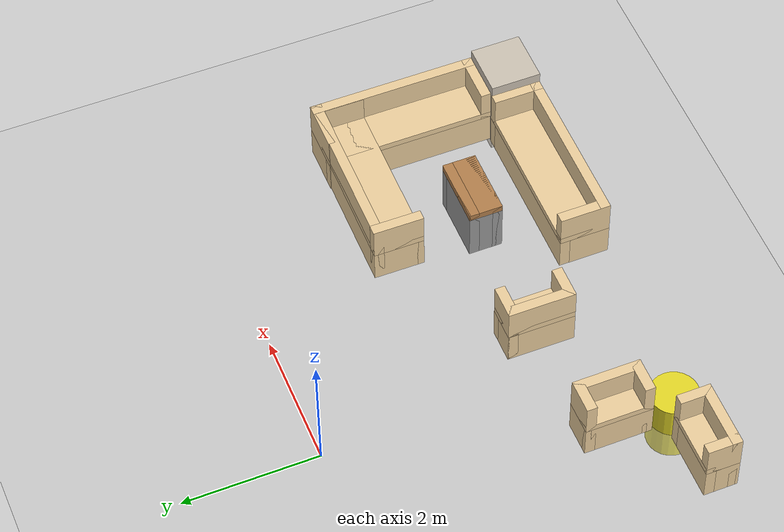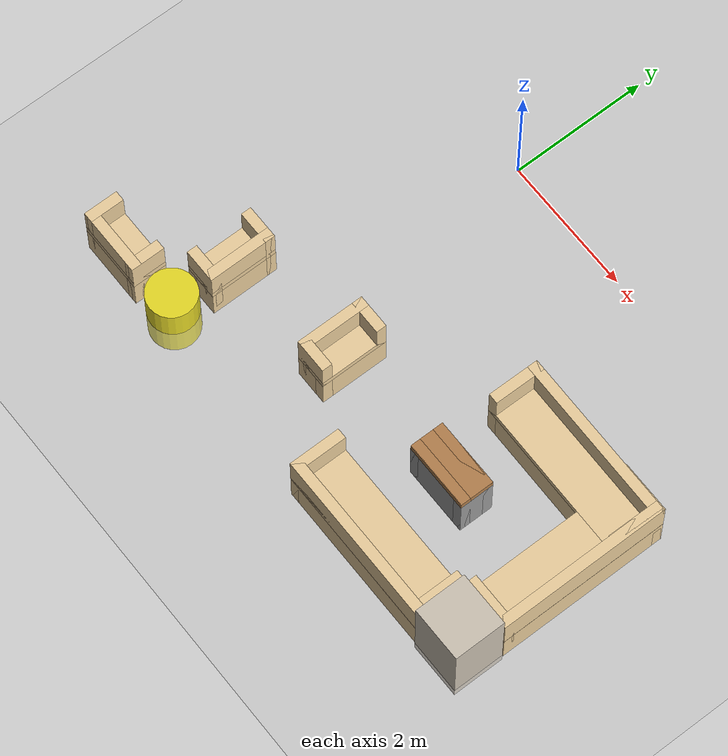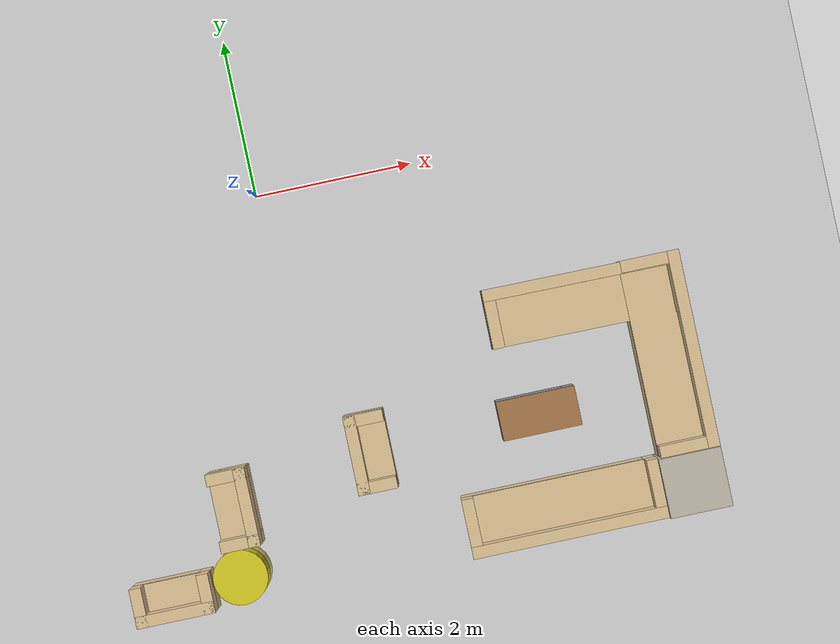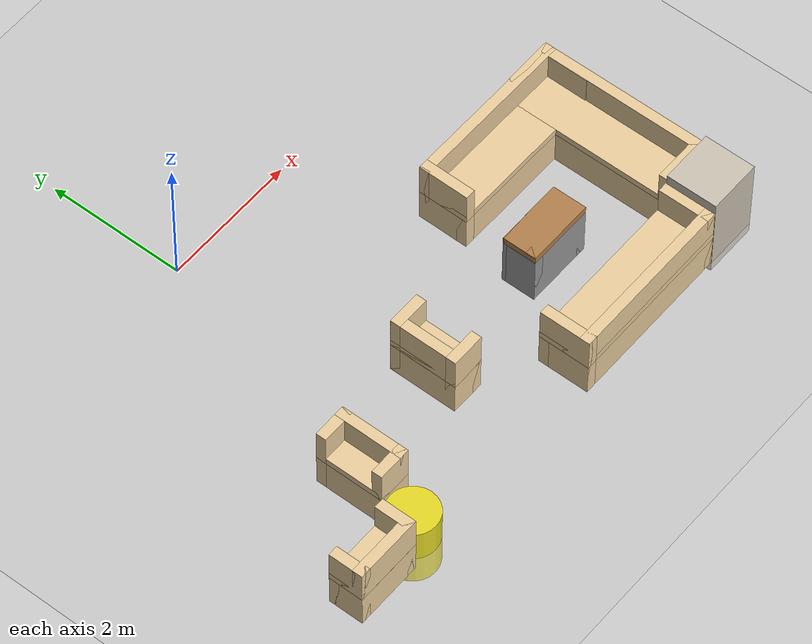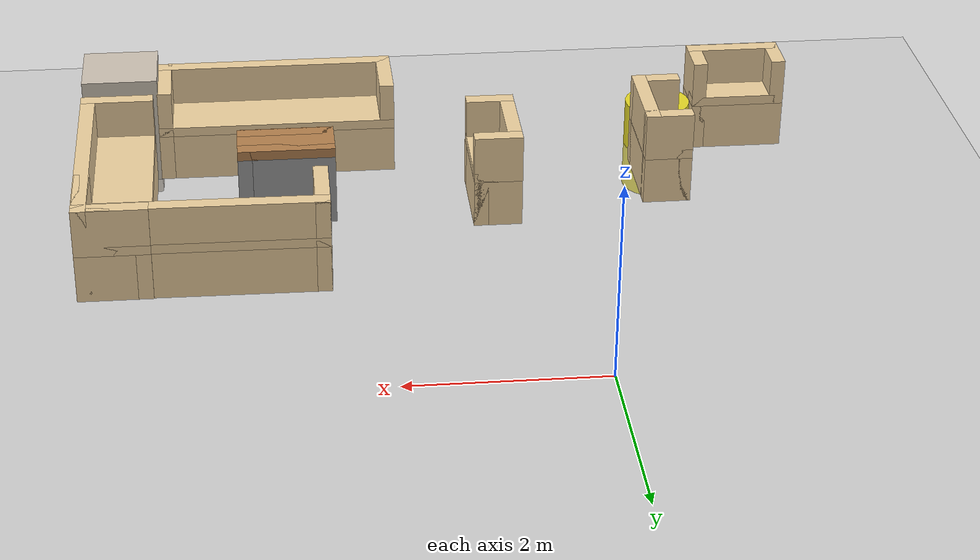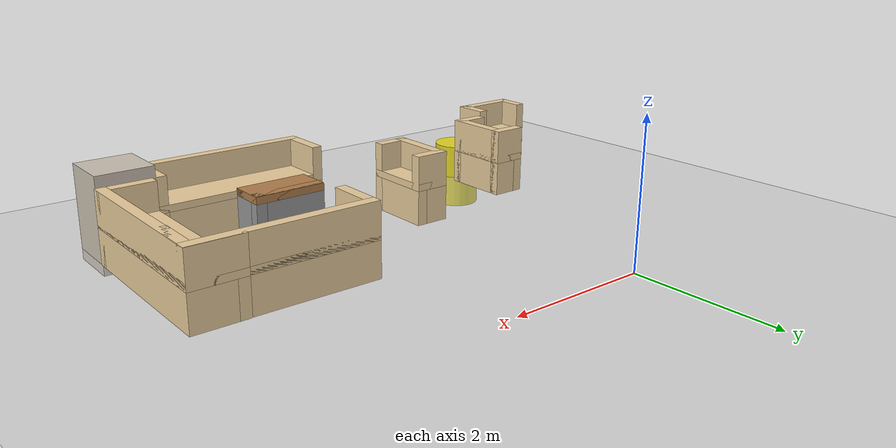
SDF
<sdf version="1.6">
 <world name="default">
  <model name="ground_plane">
   <static>1</static>
   <link name="link">
    <collision name="collision">
     <geometry><plane><normal>0 0 1</normal><size>100 100</size></plane></geometry>
     <surface><friction><ode><mu>100</mu><mu2>50</mu2></ode></friction></surface>
    </collision>
    <visual name="visual">
     <cast_shadows>0</cast_shadows>
     <geometry><plane><normal>0 0 1</normal><size>100 100</size></plane></geometry>
     <material>
      <script><uri>file://media/materials/scripts/gazebo.material</uri><name>Gazebo/Grey</name></script>
     </material>
    </visual>
   </link>
  </model>
  <model name="sofa_long.world">
   <pose>2.99095 -4.64793 0 0 -0 0</pose>
   <link name="Floor_1">
    <collision name="Floor_1_Collision">
     <geometry><box><size>2.5 0.75 0.1</size></box></geometry>
     <pose>0 0 0.05 0 -0 0</pose>
    </collision>
    <visual name="Floor_1_Visual">
     <pose>0 0 0.05 0 -0 0</pose>
     <geometry><box><size>2.5 0.75 0.1</size></box></geometry>
     <material>
      <script><uri>file://media/materials/scripts/gazebo.material</uri><name>Gazebo/Grey</name></script>
      <ambient>0.921569 0.807843 0.615686 1</ambient>
     </material>
     <meta><layer>1</layer></meta>
    </visual>
    <pose>0 0 0.5 0 -0 0</pose>
   </link>
   <link name="Wall_11">
    <collision name="Wall_11_Collision">
     <geometry><box><size>2.5 0.15 0.5</size></box></geometry>
     <pose>0 0 0.25 0 -0 0</pose>
    </collision>
    <visual name="Wall_11_Visual">
     <pose>0 0 0.25 0 -0 0</pose>
     <geometry><box><size>2.5 0.15 0.5</size></box></geometry>
     <material>
      <script><uri>file://media/materials/scripts/gazebo.material</uri><name>Gazebo/Grey</name></script>
      <ambient>0.921569 0.807843 0.615686 1</ambient>
     </material>
     <meta><layer>0</layer></meta>
    </visual>
    <pose>0 -0.3 0 0 -0 0</pose>
   </link>
   <link name="Wall_12">
    <collision name="Wall_12_Collision">
     <geometry><box><size>0.75 0.15 0.5</size></box></geometry>
     <pose>0 0 0.25 0 -0 0</pose>
    </collision>
    <visual name="Wall_12_Visual">
     <pose>0 0 0.25 0 -0 0</pose>
     <geometry><box><size>0.75 0.15 0.5</size></box></geometry>
     <material>
      <script><uri>file://media/materials/scripts/gazebo.material</uri><name>Gazebo/Grey</name></script>
      <ambient>0.921569 0.807843 0.615686 1</ambient>
     </material>
     <meta><layer>0</layer></meta>
    </visual>
    <pose>1.175 0 0 0 -0 1.5708</pose>
   </link>
   <link name="Wall_13">
    <collision name="Wall_13_Collision">
     <geometry><box><size>2.5 0.15 0.5</size></box></geometry>
     <pose>0 0 0.25 0 -0 0</pose>
    </collision>
    <visual name="Wall_13_Visual">
     <pose>0 0 0.25 0 -0 0</pose>
     <geometry><box><size>2.5 0.15 0.5</size></box></geometry>
     <material>
      <script><uri>file://media/materials/scripts/gazebo.material</uri><name>Gazebo/Grey</name></script>
      <ambient>0.921569 0.807843 0.615686 1</ambient>
     </material>
     <meta><layer>0</layer></meta>
    </visual>
    <pose>0 0.3 0 0 -0 3.14159</pose>
   </link>
   <link name="Wall_14">
    <collision name="Wall_14_Collision">
     <geometry><box><size>0.75 0.15 0.5</size></box></geometry>
     <pose>0 0 0.25 0 -0 0</pose>
    </collision>
    <visual name="Wall_14_Visual">
     <pose>0 0 0.25 0 -0 0</pose>
     <geometry><box><size>0.75 0.15 0.5</size></box></geometry>
     <material>
      <script><uri>file://media/materials/scripts/gazebo.material</uri><name>Gazebo/Grey</name></script>
      <ambient>0.921569 0.807843 0.615686 1</ambient>
     </material>
     <meta><layer>0</layer></meta>
    </visual>
    <pose>-1.175 0 0 0 0 -1.5708</pose>
   </link>
   <link name="Wall_16">
    <collision name="Wall_16_Collision">
     <geometry><box><size>2.5 0.15 0.5</size></box></geometry>
     <pose>0 0 0.25 0 -0 0</pose>
    </collision>
    <visual name="Wall_16_Visual">
     <pose>0 0 0.25 0 -0 0</pose>
     <geometry><box><size>2.5 0.15 0.5</size></box></geometry>
     <material>
      <script><uri>file://media/materials/scripts/gazebo.material</uri><name>Gazebo/Grey</name></script>
      <ambient>0.921569 0.807843 0.615686 1</ambient>
     </material>
     <meta><layer>1</layer></meta>
    </visual>
    <pose>0 -0.3 0.5 0 -0 0</pose>
   </link>
   <link name="Wall_17">
    <collision name="Wall_17_Collision">
     <geometry><box><size>0.75 0.15 0.5</size></box></geometry>
     <pose>0 0 0.25 0 -0 0</pose>
    </collision>
    <visual name="Wall_17_Visual">
     <pose>0 0 0.25 0 -0 0</pose>
     <geometry><box><size>0.75 0.15 0.5</size></box></geometry>
     <material>
      <script><uri>file://media/materials/scripts/gazebo.material</uri><name>Gazebo/Grey</name></script>
      <ambient>0.921569 0.807843 0.615686 1</ambient>
     </material>
     <meta><layer>1</layer></meta>
    </visual>
    <pose>1.175 0 0.5 0 -0 1.5708</pose>
   </link>
   <link name="Wall_19">
    <collision name="Wall_19_Collision">
     <geometry><box><size>0.75 0.15 0.5</size></box></geometry>
     <pose>0 0 0.25 0 -0 0</pose>
    </collision>
    <visual name="Wall_19_Visual">
     <pose>0 0 0.25 0 -0 0</pose>
     <geometry><box><size>0.75 0.15 0.5</size></box></geometry>
     <material>
      <script><uri>file://media/materials/scripts/gazebo.material</uri><name>Gazebo/Grey</name></script>
      <ambient>0.921569 0.807843 0.615686 1</ambient>
     </material>
     <meta><layer>1</layer></meta>
    </visual>
    <pose>-1.175 0 0.5 0 0 -1.5708</pose>
   </link>
   <static>1</static>
  </model>
  <model name="sofa_long.world_0">
   <pose>4.65758 -3.03297 0 0 -0 1.56969</pose>
   <link name="Floor_1">
    <collision name="Floor_1_Collision">
     <geometry><box><size>2.5 0.75 0.1</size></box></geometry>
     <pose>0 0 0.05 0 -0 0</pose>
    </collision>
    <visual name="Floor_1_Visual">
     <pose>0 0 0.05 0 -0 0</pose>
     <geometry><box><size>2.5 0.75 0.1</size></box></geometry>
     <material>
      <script><uri>file://media/materials/scripts/gazebo.material</uri><name>Gazebo/Grey</name></script>
      <ambient>0.921569 0.807843 0.615686 1</ambient>
     </material>
     <meta><layer>1</layer></meta>
    </visual>
    <pose>0 0 0.5 0 -0 0</pose>
   </link>
   <link name="Wall_11">
    <collision name="Wall_11_Collision">
     <geometry><box><size>2.5 0.15 0.5</size></box></geometry>
     <pose>0 0 0.25 0 -0 0</pose>
    </collision>
    <visual name="Wall_11_Visual">
     <pose>0 0 0.25 0 -0 0</pose>
     <geometry><box><size>2.5 0.15 0.5</size></box></geometry>
     <material>
      <script><uri>file://media/materials/scripts/gazebo.material</uri><name>Gazebo/Grey</name></script>
      <ambient>0.921569 0.807843 0.615686 1</ambient>
     </material>
     <meta><layer>0</layer></meta>
    </visual>
    <pose>0 -0.3 0 0 -0 0</pose>
   </link>
   <link name="Wall_12">
    <collision name="Wall_12_Collision">
     <geometry><box><size>0.75 0.15 0.5</size></box></geometry>
     <pose>0 0 0.25 0 -0 0</pose>
    </collision>
    <visual name="Wall_12_Visual">
     <pose>0 0 0.25 0 -0 0</pose>
     <geometry><box><size>0.75 0.15 0.5</size></box></geometry>
     <material>
      <script><uri>file://media/materials/scripts/gazebo.material</uri><name>Gazebo/Grey</name></script>
      <ambient>0.921569 0.807843 0.615686 1</ambient>
     </material>
     <meta><layer>0</layer></meta>
    </visual>
    <pose>1.175 0 0 0 -0 1.5708</pose>
   </link>
   <link name="Wall_13">
    <collision name="Wall_13_Collision">
     <geometry><box><size>2.5 0.15 0.5</size></box></geometry>
     <pose>0 0 0.25 0 -0 0</pose>
    </collision>
    <visual name="Wall_13_Visual">
     <pose>0 0 0.25 0 -0 0</pose>
     <geometry><box><size>2.5 0.15 0.5</size></box></geometry>
     <material>
      <script><uri>file://media/materials/scripts/gazebo.material</uri><name>Gazebo/Grey</name></script>
      <ambient>0.921569 0.807843 0.615686 1</ambient>
     </material>
     <meta><layer>0</layer></meta>
    </visual>
    <pose>0 0.3 0 0 -0 3.14159</pose>
   </link>
   <link name="Wall_14">
    <collision name="Wall_14_Collision">
     <geometry><box><size>0.75 0.15 0.5</size></box></geometry>
     <pose>0 0 0.25 0 -0 0</pose>
    </collision>
    <visual name="Wall_14_Visual">
     <pose>0 0 0.25 0 -0 0</pose>
     <geometry><box><size>0.75 0.15 0.5</size></box></geometry>
     <material>
      <script><uri>file://media/materials/scripts/gazebo.material</uri><name>Gazebo/Grey</name></script>
      <ambient>0.921569 0.807843 0.615686 1</ambient>
     </material>
     <meta><layer>0</layer></meta>
    </visual>
    <pose>-1.175 0 0 0 0 -1.5708</pose>
   </link>
   <link name="Wall_16">
    <collision name="Wall_16_Collision">
     <geometry><box><size>2.5 0.15 0.5</size></box></geometry>
     <pose>0 0 0.25 0 -0 0</pose>
    </collision>
    <visual name="Wall_16_Visual">
     <pose>0 0 0.25 0 -0 0</pose>
     <geometry><box><size>2.5 0.15 0.5</size></box></geometry>
     <material>
      <script><uri>file://media/materials/scripts/gazebo.material</uri><name>Gazebo/Grey</name></script>
      <ambient>0.921569 0.807843 0.615686 1</ambient>
     </material>
     <meta><layer>1</layer></meta>
    </visual>
    <pose>0 -0.3 0.5 0 -0 0</pose>
   </link>
   <link name="Wall_17">
    <collision name="Wall_17_Collision">
     <geometry><box><size>0.75 0.15 0.5</size></box></geometry>
     <pose>0 0 0.25 0 -0 0</pose>
    </collision>
    <visual name="Wall_17_Visual">
     <pose>0 0 0.25 0 -0 0</pose>
     <geometry><box><size>0.75 0.15 0.5</size></box></geometry>
     <material>
      <script><uri>file://media/materials/scripts/gazebo.material</uri><name>Gazebo/Grey</name></script>
      <ambient>0.921569 0.807843 0.615686 1</ambient>
     </material>
     <meta><layer>1</layer></meta>
    </visual>
    <pose>1.175 0 0.5 0 -0 1.5708</pose>
   </link>
   <link name="Wall_19">
    <collision name="Wall_19_Collision">
     <geometry><box><size>0.75 0.15 0.5</size></box></geometry>
     <pose>0 0 0.25 0 -0 0</pose>
    </collision>
    <visual name="Wall_19_Visual">
     <pose>0 0 0.25 0 -0 0</pose>
     <geometry><box><size>0.75 0.15 0.5</size></box></geometry>
     <material>
      <script><uri>file://media/materials/scripts/gazebo.material</uri><name>Gazebo/Grey</name></script>
      <ambient>0.921569 0.807843 0.615686 1</ambient>
     </material>
     <meta><layer>1</layer></meta>
    </visual>
    <pose>-1.175 0 0.5 0 0 -1.5708</pose>
   </link>
   <static>1</static>
  </model>
  <model name="table_small.world">
   <pose>2.91825 -3.42446 0 0 -0 0</pose>
   <link name="Floor_2">
    <collision name="Floor_2_Collision">
     <geometry><box><size>1 0.5 0.1</size></box></geometry>
     <pose>0 0 0.05 0 -0 0</pose>
    </collision>
    <visual name="Floor_2_Visual">
     <pose>0 0 0.05 0 -0 0</pose>
     <geometry><box><size>1 0.5 0.1</size></box></geometry>
     <material>
      <script><uri>file://media/materials/scripts/gazebo.material</uri><name>Gazebo/Wood</name></script>
      <ambient>1 1 1 1</ambient>
     </material>
     <meta><layer>1</layer></meta>
    </visual>
    <pose>0 0 0.75 0 -0 0</pose>
   </link>
   <link name="Wall_10">
    <collision name="Wall_10_Collision">
     <geometry><box><size>0.5 0.15 0.75</size></box></geometry>
     <pose>0 0 0.375 0 -0 0</pose>
    </collision>
    <visual name="Wall_10_Visual">
     <pose>0 0 0.375 0 -0 0</pose>
     <geometry><box><size>0.5 0.15 0.75</size></box></geometry>
     <material>
      <script><uri>file://media/materials/scripts/gazebo.material</uri><name>Gazebo/Grey</name></script>
      <ambient>1 1 1 1</ambient>
     </material>
     <meta><layer>0</layer></meta>
    </visual>
    <pose>0.425 0 0 0 -0 1.5708</pose>
   </link>
   <link name="Wall_11">
    <collision name="Wall_11_Collision">
     <geometry><box><size>1 0.15 0.75</size></box></geometry>
     <pose>0 0 0.375 0 -0 0</pose>
    </collision>
    <visual name="Wall_11_Visual">
     <pose>0 0 0.375 0 -0 0</pose>
     <geometry><box><size>1 0.15 0.75</size></box></geometry>
     <material>
      <script><uri>file://media/materials/scripts/gazebo.material</uri><name>Gazebo/Grey</name></script>
      <ambient>1 1 1 1</ambient>
     </material>
     <meta><layer>0</layer></meta>
    </visual>
    <pose>0 0.175 0 0 -0 3.14159</pose>
   </link>
   <link name="Wall_12">
    <collision name="Wall_12_Collision">
     <geometry><box><size>0.5 0.15 0.75</size></box></geometry>
     <pose>0 0 0.375 0 -0 0</pose>
    </collision>
    <visual name="Wall_12_Visual">
     <pose>0 0 0.375 0 -0 0</pose>
     <geometry><box><size>0.5 0.15 0.75</size></box></geometry>
     <material>
      <script><uri>file://media/materials/scripts/gazebo.material</uri><name>Gazebo/Grey</name></script>
      <ambient>1 1 1 1</ambient>
     </material>
     <meta><layer>0</layer></meta>
    </visual>
    <pose>-0.425 0 0 0 0 -1.5708</pose>
   </link>
   <link name="Wall_19">
    <collision name="Wall_19_Collision">
     <geometry><box><size>1 0.15 0.1</size></box></geometry>
     <pose>0 0 0.05 0 -0 0</pose>
    </collision>
    <visual name="Wall_19_Visual">
     <pose>0 0 0.05 0 -0 0</pose>
     <geometry><box><size>1 0.15 0.1</size></box></geometry>
     <material>
      <script><uri>file://media/materials/scripts/gazebo.material</uri><name>Gazebo/Wood</name></script>
      <ambient>1 1 1 1</ambient>
     </material>
     <meta><layer>1</layer></meta>
    </visual>
    <pose>0 -0.175 0.75 0 -0 0</pose>
   </link>
   <link name="Wall_21">
    <collision name="Wall_21_Collision">
     <geometry><box><size>1 0.15 0.1</size></box></geometry>
     <pose>0 0 0.05 0 -0 0</pose>
    </collision>
    <visual name="Wall_21_Visual">
     <pose>0 0 0.05 0 -0 0</pose>
     <geometry><box><size>1 0.15 0.1</size></box></geometry>
     <material>
      <script><uri>file://media/materials/scripts/gazebo.material</uri><name>Gazebo/Wood</name></script>
      <ambient>1 1 1 1</ambient>
     </material>
     <meta><layer>1</layer></meta>
    </visual>
    <pose>0 0.175 0.75 0 -0 3.14159</pose>
   </link>
   <link name="Wall_9">
    <collision name="Wall_9_Collision">
     <geometry><box><size>1 0.15 0.75</size></box></geometry>
     <pose>0 0 0.375 0 -0 0</pose>
    </collision>
    <visual name="Wall_9_Visual">
     <pose>0 0 0.375 0 -0 0</pose>
     <geometry><box><size>1 0.15 0.75</size></box></geometry>
     <material>
      <script><uri>file://media/materials/scripts/gazebo.material</uri><name>Gazebo/Grey</name></script>
      <ambient>1 1 1 1</ambient>
     </material>
     <meta><layer>0</layer></meta>
    </visual>
    <pose>0 -0.175 0 0 -0 0</pose>
   </link>
   <static>1</static>
  </model>
  <model name="livingroom_small_table">
   <link name="link">
    <pose>0 -0.143425 0 0 -0 0</pose>
    <inertial>
     <mass>0.769276</mass>
     <inertia>
      <ixx>0.146265</ixx>
      <ixy>0</ixy>
      <ixz>0</ixz>
      <iyy>0.149979</iyy>
      <iyz>0</iyz>
      <izz>0.0752102</izz>
     </inertia>
    </inertial>
    <visual name="visual">
     <geometry><box><size>0.784585 0.746751 1.313</size></box></geometry>
     <material>
      <script><name>Gazebo/Grey</name><uri>file://media/materials/scripts/gazebo.material</uri></script>
      <shader type="pixel"><normal_map>__default__</normal_map></shader>
      <ambient>0.8 0.76 0.7 1</ambient>
      <diffuse>0.7 0.7 0.7 1</diffuse>
      <specular>0.01 0.01 0.01 1</specular>
      <emissive>0 0 0 1</emissive>
     </material>
    </visual>
    <collision name="collision">
     <geometry><box><size>0.784585 0.746751 1.313</size></box></geometry>
     <surface>
      <friction>
       <ode><mu>1</mu><mu2>1</mu2><fdir1>0 0 0</fdir1><slip1>0</slip1><slip2>0</slip2></ode>
       <torsional>
        <coefficient>1</coefficient>
        <patch_radius>0</patch_radius>
        <surface_radius>0</surface_radius>
        <use_patch_radius>1</use_patch_radius>
        <ode><slip>0</slip></ode>
       </torsional>
      </friction>
      <bounce><restitution_coefficient>0</restitution_coefficient><threshold>1e+06</threshold></bounce>
      <contact>
       <collide_without_contact>0</collide_without_contact>
       <collide_without_contact_bitmask>1</collide_without_contact_bitmask>
       <collide_bitmask>1</collide_bitmask>
       <ode>
        <soft_cfm>0</soft_cfm>
        <soft_erp>0.2</soft_erp>
        <kp>1e+13</kp>
        <kd>1</kd>
        <max_vel>0.01</max_vel>
        <min_depth>0</min_depth>
       </ode>
       <bullet>
        <split_impulse>1</split_impulse>
        <split_impulse_penetration_threshold>-0.01</split_impulse_penetration_threshold>
        <soft_cfm>0</soft_cfm>
        <soft_erp>0.2</soft_erp>
        <kp>1e+13</kp>
        <kd>1</kd>
       </bullet>
      </contact>
     </surface>
    </collision>
   </link>
   <static>1</static>
   <pose>4.62378 -4.51183 0.5 0 -0 0</pose>
  </model>
  <model name="sofa_long.world_1">
   <pose>3.77732 -2.16265 0 0 -0 3.13345</pose>
   <link name="Floor_1">
    <collision name="Floor_1_Collision">
     <geometry><box><size>2.5 0.75 0.1</size></box></geometry>
     <pose>0 0 0.05 0 -0 0</pose>
    </collision>
    <visual name="Floor_1_Visual">
     <pose>0 0 0.05 0 -0 0</pose>
     <geometry><box><size>2.5 0.75 0.1</size></box></geometry>
     <material>
      <script><uri>file://media/materials/scripts/gazebo.material</uri><name>Gazebo/Grey</name></script>
      <ambient>0.921569 0.807843 0.615686 1</ambient>
     </material>
     <meta><layer>1</layer></meta>
    </visual>
    <pose>0 0 0.5 0 -0 0</pose>
   </link>
   <link name="Wall_11">
    <collision name="Wall_11_Collision">
     <geometry><box><size>2.5 0.15 0.5</size></box></geometry>
     <pose>0 0 0.25 0 -0 0</pose>
    </collision>
    <visual name="Wall_11_Visual">
     <pose>0 0 0.25 0 -0 0</pose>
     <geometry><box><size>2.5 0.15 0.5</size></box></geometry>
     <material>
      <script><uri>file://media/materials/scripts/gazebo.material</uri><name>Gazebo/Grey</name></script>
      <ambient>0.921569 0.807843 0.615686 1</ambient>
     </material>
     <meta><layer>0</layer></meta>
    </visual>
    <pose>0 -0.3 0 0 -0 0</pose>
   </link>
   <link name="Wall_12">
    <collision name="Wall_12_Collision">
     <geometry><box><size>0.75 0.15 0.5</size></box></geometry>
     <pose>0 0 0.25 0 -0 0</pose>
    </collision>
    <visual name="Wall_12_Visual">
     <pose>0 0 0.25 0 -0 0</pose>
     <geometry><box><size>0.75 0.15 0.5</size></box></geometry>
     <material>
      <script><uri>file://media/materials/scripts/gazebo.material</uri><name>Gazebo/Grey</name></script>
      <ambient>0.921569 0.807843 0.615686 1</ambient>
     </material>
     <meta><layer>0</layer></meta>
    </visual>
    <pose>1.175 0 0 0 -0 1.5708</pose>
   </link>
   <link name="Wall_13">
    <collision name="Wall_13_Collision">
     <geometry><box><size>2.5 0.15 0.5</size></box></geometry>
     <pose>0 0 0.25 0 -0 0</pose>
    </collision>
    <visual name="Wall_13_Visual">
     <pose>0 0 0.25 0 -0 0</pose>
     <geometry><box><size>2.5 0.15 0.5</size></box></geometry>
     <material>
      <script><uri>file://media/materials/scripts/gazebo.material</uri><name>Gazebo/Grey</name></script>
      <ambient>0.921569 0.807843 0.615686 1</ambient>
     </material>
     <meta><layer>0</layer></meta>
    </visual>
    <pose>0 0.3 0 0 -0 3.14159</pose>
   </link>
   <link name="Wall_14">
    <collision name="Wall_14_Collision">
     <geometry><box><size>0.75 0.15 0.5</size></box></geometry>
     <pose>0 0 0.25 0 -0 0</pose>
    </collision>
    <visual name="Wall_14_Visual">
     <pose>0 0 0.25 0 -0 0</pose>
     <geometry><box><size>0.75 0.15 0.5</size></box></geometry>
     <material>
      <script><uri>file://media/materials/scripts/gazebo.material</uri><name>Gazebo/Grey</name></script>
      <ambient>0.921569 0.807843 0.615686 1</ambient>
     </material>
     <meta><layer>0</layer></meta>
    </visual>
    <pose>-1.175 0 0 0 0 -1.5708</pose>
   </link>
   <link name="Wall_16">
    <collision name="Wall_16_Collision">
     <geometry><box><size>2.5 0.15 0.5</size></box></geometry>
     <pose>0 0 0.25 0 -0 0</pose>
    </collision>
    <visual name="Wall_16_Visual">
     <pose>0 0 0.25 0 -0 0</pose>
     <geometry><box><size>2.5 0.15 0.5</size></box></geometry>
     <material>
      <script><uri>file://media/materials/scripts/gazebo.material</uri><name>Gazebo/Grey</name></script>
      <ambient>0.921569 0.807843 0.615686 1</ambient>
     </material>
     <meta><layer>1</layer></meta>
    </visual>
    <pose>0 -0.3 0.5 0 -0 0</pose>
   </link>
   <link name="Wall_17">
    <collision name="Wall_17_Collision">
     <geometry><box><size>0.75 0.15 0.5</size></box></geometry>
     <pose>0 0 0.25 0 -0 0</pose>
    </collision>
    <visual name="Wall_17_Visual">
     <pose>0 0 0.25 0 -0 0</pose>
     <geometry><box><size>0.75 0.15 0.5</size></box></geometry>
     <material>
      <script><uri>file://media/materials/scripts/gazebo.material</uri><name>Gazebo/Grey</name></script>
      <ambient>0.921569 0.807843 0.615686 1</ambient>
     </material>
     <meta><layer>1</layer></meta>
    </visual>
    <pose>1.175 0 0.5 0 -0 1.5708</pose>
   </link>
   <link name="Wall_19">
    <collision name="Wall_19_Collision">
     <geometry><box><size>0.75 0.15 0.5</size></box></geometry>
     <pose>0 0 0.25 0 -0 0</pose>
    </collision>
    <visual name="Wall_19_Visual">
     <pose>0 0 0.25 0 -0 0</pose>
     <geometry><box><size>0.75 0.15 0.5</size></box></geometry>
     <material>
      <script><uri>file://media/materials/scripts/gazebo.material</uri><name>Gazebo/Grey</name></script>
      <ambient>0.921569 0.807843 0.615686 1</ambient>
     </material>
     <meta><layer>1</layer></meta>
    </visual>
    <pose>-1.175 0 0.5 0 0 -1.5708</pose>
   </link>
   <static>1</static>
  </model>
  <model name="unit_cylinder_two">
   <link name="link">
    <pose>0.189745 0.249697 0 0 -0 0</pose>
    <inertial>
     <mass>0.487334</mass>
     <inertia>
      <ixx>0.0554546</ixx>
      <ixy>0</ixy>
      <ixz>0</ixz>
      <iyy>0.0554546</iyy>
      <iyz>0</iyz>
      <izz>0.0296869</izz>
     </inertia>
    </inertial>
    <visual name="visual">
     <geometry><cylinder><radius>0.349047</radius><length>1</length></cylinder></geometry>
     <material>
      <script><name>Gazebo/Yellow</name><uri>file://media/materials/scripts/gazebo.material</uri></script>
      <shader type="pixel"><normal_map>__default__</normal_map></shader>
      <ambient>0.4 0.3 0.1 1</ambient>
      <diffuse>0.4 0.7 0.9 1</diffuse>
      <specular>0.01 0.01 0.01 1</specular>
      <emissive>0 0 0 1</emissive>
     </material>
    </visual>
    <collision name="collision">
     <geometry><cylinder><radius>0.349047</radius><length>1</length></cylinder></geometry>
     <surface>
      <friction>
       <ode><mu>1</mu><mu2>1</mu2><fdir1>0 0 0</fdir1><slip1>0</slip1><slip2>0</slip2></ode>
       <torsional>
        <coefficient>1</coefficient>
        <patch_radius>0</patch_radius>
        <surface_radius>0</surface_radius>
        <use_patch_radius>1</use_patch_radius>
        <ode><slip>0</slip></ode>
       </torsional>
      </friction>
      <bounce><restitution_coefficient>0</restitution_coefficient><threshold>1e+06</threshold></bounce>
      <contact>
       <collide_without_contact>0</collide_without_contact>
       <collide_without_contact_bitmask>1</collide_without_contact_bitmask>
       <collide_bitmask>1</collide_bitmask>
       <ode>
        <soft_cfm>0</soft_cfm>
        <soft_erp>0.2</soft_erp>
        <kp>1e+13</kp>
        <kd>1</kd>
        <max_vel>0.01</max_vel>
        <min_depth>0</min_depth>
       </ode>
       <bullet>
        <split_impulse>1</split_impulse>
        <split_impulse_penetration_threshold>-0.01</split_impulse_penetration_threshold>
        <soft_cfm>0</soft_cfm>
        <soft_erp>0.2</soft_erp>
        <kp>1e+13</kp>
        <kd>1</kd>
       </bullet>
      </contact>
     </surface>
    </collision>
   </link>
   <static>1</static>
   <pose>-1.36614 -4.91786 0 0 -0 0</pose>
  </model>
  <model name="sofa_short.world">
   <pose>-2.02857 -4.74297 0 0 -0 0</pose>
   <link name="Floor_0">
    <collision name="Floor_0_Collision">
     <geometry><box><size>1 0.5 0.1</size></box></geometry>
     <pose>0 0 0.05 0 -0 0</pose>
    </collision>
    <visual name="Floor_0_Visual">
     <pose>0 0 0.05 0 -0 0</pose>
     <geometry><box><size>1 0.5 0.1</size></box></geometry>
     <material>
      <script><uri>file://media/materials/scripts/gazebo.material</uri><name>Gazebo/Grey</name></script>
      <ambient>0.921569 0.807843 0.615686 1</ambient>
     </material>
     <meta><layer>1</layer></meta>
    </visual>
    <pose>0 0 0.5 0 -0 0</pose>
   </link>
   <link name="Wall_0">
    <collision name="Wall_0_Collision">
     <geometry><box><size>1 0.15 0.5</size></box></geometry>
     <pose>0 0 0.25 0 -0 0</pose>
    </collision>
    <visual name="Wall_0_Visual">
     <pose>0 0 0.25 0 -0 0</pose>
     <geometry><box><size>1 0.15 0.5</size></box></geometry>
     <material>
      <script><uri>file://media/materials/scripts/gazebo.material</uri><name>Gazebo/Grey</name></script>
      <ambient>0.921569 0.807843 0.615686 1</ambient>
     </material>
     <meta><layer>0</layer></meta>
    </visual>
    <pose>0 -0.175 0 0 -0 0</pose>
   </link>
   <link name="Wall_1">
    <collision name="Wall_1_Collision">
     <geometry><box><size>0.5 0.15 0.5</size></box></geometry>
     <pose>0 0 0.25 0 -0 0</pose>
    </collision>
    <visual name="Wall_1_Visual">
     <pose>0 0 0.25 0 -0 0</pose>
     <geometry><box><size>0.5 0.15 0.5</size></box></geometry>
     <material>
      <script><uri>file://media/materials/scripts/gazebo.material</uri><name>Gazebo/Grey</name></script>
      <ambient>0.921569 0.807843 0.615686 1</ambient>
     </material>
     <meta><layer>0</layer></meta>
    </visual>
    <pose>0.425 0 0 0 -0 1.5708</pose>
   </link>
   <link name="Wall_2">
    <collision name="Wall_2_Collision">
     <geometry><box><size>1 0.15 0.5</size></box></geometry>
     <pose>0 0 0.25 0 -0 0</pose>
    </collision>
    <visual name="Wall_2_Visual">
     <pose>0 0 0.25 0 -0 0</pose>
     <geometry><box><size>1 0.15 0.5</size></box></geometry>
     <material>
      <script><uri>file://media/materials/scripts/gazebo.material</uri><name>Gazebo/Grey</name></script>
      <ambient>0.921569 0.807843 0.615686 1</ambient>
     </material>
     <meta><layer>0</layer></meta>
    </visual>
    <pose>0 0.175 0 0 -0 3.14159</pose>
   </link>
   <link name="Wall_3">
    <collision name="Wall_3_Collision">
     <geometry><box><size>0.5 0.15 0.5</size></box></geometry>
     <pose>0 0 0.25 0 -0 0</pose>
    </collision>
    <visual name="Wall_3_Visual">
     <pose>0 0 0.25 0 -0 0</pose>
     <geometry><box><size>0.5 0.15 0.5</size></box></geometry>
     <material>
      <script><uri>file://media/materials/scripts/gazebo.material</uri><name>Gazebo/Grey</name></script>
      <ambient>0.921569 0.807843 0.615686 1</ambient>
     </material>
     <meta><layer>0</layer></meta>
    </visual>
    <pose>-0.425 0 0 0 0 -1.5708</pose>
   </link>
   <link name="Wall_5">
    <collision name="Wall_5_Collision">
     <geometry><box><size>1 0.15 0.5</size></box></geometry>
     <pose>0 0 0.25 0 -0 0</pose>
    </collision>
    <visual name="Wall_5_Visual">
     <pose>0 0 0.25 0 -0 0</pose>
     <geometry><box><size>1 0.15 0.5</size></box></geometry>
     <material>
      <script><uri>file://media/materials/scripts/gazebo.material</uri><name>Gazebo/Grey</name></script>
      <ambient>0.921569 0.807843 0.615686 1</ambient>
     </material>
     <meta><layer>1</layer></meta>
    </visual>
    <pose>0 -0.175 0.5 0 -0 0</pose>
   </link>
   <link name="Wall_6">
    <collision name="Wall_6_Collision">
     <geometry><box><size>0.5 0.15 0.5</size></box></geometry>
     <pose>0 0 0.25 0 -0 0</pose>
    </collision>
    <visual name="Wall_6_Visual">
     <pose>0 0 0.25 0 -0 0</pose>
     <geometry><box><size>0.5 0.15 0.5</size></box></geometry>
     <material>
      <script><uri>file://media/materials/scripts/gazebo.material</uri><name>Gazebo/Grey</name></script>
      <ambient>0.921569 0.807843 0.615686 1</ambient>
     </material>
     <meta><layer>1</layer></meta>
    </visual>
    <pose>0.425 0 0.5 0 -0 1.5708</pose>
   </link>
   <link name="Wall_8">
    <collision name="Wall_8_Collision">
     <geometry><box><size>0.5 0.15 0.5</size></box></geometry>
     <pose>0 0 0.25 0 -0 0</pose>
    </collision>
    <visual name="Wall_8_Visual">
     <pose>0 0 0.25 0 -0 0</pose>
     <geometry><box><size>0.5 0.15 0.5</size></box></geometry>
     <material>
      <script><uri>file://media/materials/scripts/gazebo.material</uri><name>Gazebo/Grey</name></script>
      <ambient>0.921569 0.807843 0.615686 1</ambient>
     </material>
     <meta><layer>1</layer></meta>
    </visual>
    <pose>-0.425 0 0.5 0 0 -1.5708</pose>
   </link>
   <static>1</static>
  </model>
  <model name="sofa_short.world_0">
   <pose>0.762575 -3.45472 0 0 0 -1.57332</pose>
   <link name="Floor_0">
    <collision name="Floor_0_Collision">
     <geometry><box><size>1 0.5 0.1</size></box></geometry>
     <pose>0 0 0.05 0 -0 0</pose>
    </collision>
    <visual name="Floor_0_Visual">
     <pose>0 0 0.05 0 -0 0</pose>
     <geometry><box><size>1 0.5 0.1</size></box></geometry>
     <material>
      <script><uri>file://media/materials/scripts/gazebo.material</uri><name>Gazebo/Grey</name></script>
      <ambient>0.921569 0.807843 0.615686 1</ambient>
     </material>
     <meta><layer>1</layer></meta>
    </visual>
    <pose>0 0 0.5 0 -0 0</pose>
   </link>
   <link name="Wall_0">
    <collision name="Wall_0_Collision">
     <geometry><box><size>1 0.15 0.5</size></box></geometry>
     <pose>0 0 0.25 0 -0 0</pose>
    </collision>
    <visual name="Wall_0_Visual">
     <pose>0 0 0.25 0 -0 0</pose>
     <geometry><box><size>1 0.15 0.5</size></box></geometry>
     <material>
      <script><uri>file://media/materials/scripts/gazebo.material</uri><name>Gazebo/Grey</name></script>
      <ambient>0.921569 0.807843 0.615686 1</ambient>
     </material>
     <meta><layer>0</layer></meta>
    </visual>
    <pose>0 -0.175 0 0 -0 0</pose>
   </link>
   <link name="Wall_1">
    <collision name="Wall_1_Collision">
     <geometry><box><size>0.5 0.15 0.5</size></box></geometry>
     <pose>0 0 0.25 0 -0 0</pose>
    </collision>
    <visual name="Wall_1_Visual">
     <pose>0 0 0.25 0 -0 0</pose>
     <geometry><box><size>0.5 0.15 0.5</size></box></geometry>
     <material>
      <script><uri>file://media/materials/scripts/gazebo.material</uri><name>Gazebo/Grey</name></script>
      <ambient>0.921569 0.807843 0.615686 1</ambient>
     </material>
     <meta><layer>0</layer></meta>
    </visual>
    <pose>0.425 0 0 0 -0 1.5708</pose>
   </link>
   <link name="Wall_2">
    <collision name="Wall_2_Collision">
     <geometry><box><size>1 0.15 0.5</size></box></geometry>
     <pose>0 0 0.25 0 -0 0</pose>
    </collision>
    <visual name="Wall_2_Visual">
     <pose>0 0 0.25 0 -0 0</pose>
     <geometry><box><size>1 0.15 0.5</size></box></geometry>
     <material>
      <script><uri>file://media/materials/scripts/gazebo.material</uri><name>Gazebo/Grey</name></script>
      <ambient>0.921569 0.807843 0.615686 1</ambient>
     </material>
     <meta><layer>0</layer></meta>
    </visual>
    <pose>0 0.175 0 0 -0 3.14159</pose>
   </link>
   <link name="Wall_3">
    <collision name="Wall_3_Collision">
     <geometry><box><size>0.5 0.15 0.5</size></box></geometry>
     <pose>0 0 0.25 0 -0 0</pose>
    </collision>
    <visual name="Wall_3_Visual">
     <pose>0 0 0.25 0 -0 0</pose>
     <geometry><box><size>0.5 0.15 0.5</size></box></geometry>
     <material>
      <script><uri>file://media/materials/scripts/gazebo.material</uri><name>Gazebo/Grey</name></script>
      <ambient>0.921569 0.807843 0.615686 1</ambient>
     </material>
     <meta><layer>0</layer></meta>
    </visual>
    <pose>-0.425 0 0 0 0 -1.5708</pose>
   </link>
   <link name="Wall_5">
    <collision name="Wall_5_Collision">
     <geometry><box><size>1 0.15 0.5</size></box></geometry>
     <pose>0 0 0.25 0 -0 0</pose>
    </collision>
    <visual name="Wall_5_Visual">
     <pose>0 0 0.25 0 -0 0</pose>
     <geometry><box><size>1 0.15 0.5</size></box></geometry>
     <material>
      <script><uri>file://media/materials/scripts/gazebo.material</uri><name>Gazebo/Grey</name></script>
      <ambient>0.921569 0.807843 0.615686 1</ambient>
     </material>
     <meta><layer>1</layer></meta>
    </visual>
    <pose>0 -0.175 0.5 0 -0 0</pose>
   </link>
   <link name="Wall_6">
    <collision name="Wall_6_Collision">
     <geometry><box><size>0.5 0.15 0.5</size></box></geometry>
     <pose>0 0 0.25 0 -0 0</pose>
    </collision>
    <visual name="Wall_6_Visual">
     <pose>0 0 0.25 0 -0 0</pose>
     <geometry><box><size>0.5 0.15 0.5</size></box></geometry>
     <material>
      <script><uri>file://media/materials/scripts/gazebo.material</uri><name>Gazebo/Grey</name></script>
      <ambient>0.921569 0.807843 0.615686 1</ambient>
     </material>
     <meta><layer>1</layer></meta>
    </visual>
    <pose>0.425 0 0.5 0 -0 1.5708</pose>
   </link>
   <link name="Wall_8">
    <collision name="Wall_8_Collision">
     <geometry><box><size>0.5 0.15 0.5</size></box></geometry>
     <pose>0 0 0.25 0 -0 0</pose>
    </collision>
    <visual name="Wall_8_Visual">
     <pose>0 0 0.25 0 -0 0</pose>
     <geometry><box><size>0.5 0.15 0.5</size></box></geometry>
     <material>
      <script><uri>file://media/materials/scripts/gazebo.material</uri><name>Gazebo/Grey</name></script>
      <ambient>0.921569 0.807843 0.615686 1</ambient>
     </material>
     <meta><layer>1</layer></meta>
    </visual>
    <pose>-0.425 0 0.5 0 0 -1.5708</pose>
   </link>
   <static>1</static>
  </model>
  <model name="sofa_short.world_1">
   <pose>-1.05958 -3.79773 0 0 -0 1.57263</pose>
   <link name="Floor_0">
    <collision name="Floor_0_Collision">
     <geometry><box><size>1 0.5 0.1</size></box></geometry>
     <pose>0 0 0.05 0 -0 0</pose>
    </collision>
    <visual name="Floor_0_Visual">
     <pose>0 0 0.05 0 -0 0</pose>
     <geometry><box><size>1 0.5 0.1</size></box></geometry>
     <material>
      <script><uri>file://media/materials/scripts/gazebo.material</uri><name>Gazebo/Grey</name></script>
      <ambient>0.921569 0.807843 0.615686 1</ambient>
     </material>
     <meta><layer>1</layer></meta>
    </visual>
    <pose>0 0 0.5 0 -0 0</pose>
   </link>
   <link name="Wall_0">
    <collision name="Wall_0_Collision">
     <geometry><box><size>1 0.15 0.5</size></box></geometry>
     <pose>0 0 0.25 0 -0 0</pose>
    </collision>
    <visual name="Wall_0_Visual">
     <pose>0 0 0.25 0 -0 0</pose>
     <geometry><box><size>1 0.15 0.5</size></box></geometry>
     <material>
      <script><uri>file://media/materials/scripts/gazebo.material</uri><name>Gazebo/Grey</name></script>
      <ambient>0.921569 0.807843 0.615686 1</ambient>
     </material>
     <meta><layer>0</layer></meta>
    </visual>
    <pose>0 -0.175 0 0 -0 0</pose>
   </link>
   <link name="Wall_1">
    <collision name="Wall_1_Collision">
     <geometry><box><size>0.5 0.15 0.5</size></box></geometry>
     <pose>0 0 0.25 0 -0 0</pose>
    </collision>
    <visual name="Wall_1_Visual">
     <pose>0 0 0.25 0 -0 0</pose>
     <geometry><box><size>0.5 0.15 0.5</size></box></geometry>
     <material>
      <script><uri>file://media/materials/scripts/gazebo.material</uri><name>Gazebo/Grey</name></script>
      <ambient>0.921569 0.807843 0.615686 1</ambient>
     </material>
     <meta><layer>0</layer></meta>
    </visual>
    <pose>0.425 0 0 0 -0 1.5708</pose>
   </link>
   <link name="Wall_2">
    <collision name="Wall_2_Collision">
     <geometry><box><size>1 0.15 0.5</size></box></geometry>
     <pose>0 0 0.25 0 -0 0</pose>
    </collision>
    <visual name="Wall_2_Visual">
     <pose>0 0 0.25 0 -0 0</pose>
     <geometry><box><size>1 0.15 0.5</size></box></geometry>
     <material>
      <script><uri>file://media/materials/scripts/gazebo.material</uri><name>Gazebo/Grey</name></script>
      <ambient>0.921569 0.807843 0.615686 1</ambient>
     </material>
     <meta><layer>0</layer></meta>
    </visual>
    <pose>0 0.175 0 0 -0 3.14159</pose>
   </link>
   <link name="Wall_3">
    <collision name="Wall_3_Collision">
     <geometry><box><size>0.5 0.15 0.5</size></box></geometry>
     <pose>0 0 0.25 0 -0 0</pose>
    </collision>
    <visual name="Wall_3_Visual">
     <pose>0 0 0.25 0 -0 0</pose>
     <geometry><box><size>0.5 0.15 0.5</size></box></geometry>
     <material>
      <script><uri>file://media/materials/scripts/gazebo.material</uri><name>Gazebo/Grey</name></script>
      <ambient>0.921569 0.807843 0.615686 1</ambient>
     </material>
     <meta><layer>0</layer></meta>
    </visual>
    <pose>-0.425 0 0 0 0 -1.5708</pose>
   </link>
   <link name="Wall_5">
    <collision name="Wall_5_Collision">
     <geometry><box><size>1 0.15 0.5</size></box></geometry>
     <pose>0 0 0.25 0 -0 0</pose>
    </collision>
    <visual name="Wall_5_Visual">
     <pose>0 0 0.25 0 -0 0</pose>
     <geometry><box><size>1 0.15 0.5</size></box></geometry>
     <material>
      <script><uri>file://media/materials/scripts/gazebo.material</uri><name>Gazebo/Grey</name></script>
      <ambient>0.921569 0.807843 0.615686 1</ambient>
     </material>
     <meta><layer>1</layer></meta>
    </visual>
    <pose>0 -0.175 0.5 0 -0 0</pose>
   </link>
   <link name="Wall_6">
    <collision name="Wall_6_Collision">
     <geometry><box><size>0.5 0.15 0.5</size></box></geometry>
     <pose>0 0 0.25 0 -0 0</pose>
    </collision>
    <visual name="Wall_6_Visual">
     <pose>0 0 0.25 0 -0 0</pose>
     <geometry><box><size>0.5 0.15 0.5</size></box></geometry>
     <material>
      <script><uri>file://media/materials/scripts/gazebo.material</uri><name>Gazebo/Grey</name></script>
      <ambient>0.921569 0.807843 0.615686 1</ambient>
     </material>
     <meta><layer>1</layer></meta>
    </visual>
    <pose>0.425 0 0.5 0 -0 1.5708</pose>
   </link>
   <link name="Wall_8">
    <collision name="Wall_8_Collision">
     <geometry><box><size>0.5 0.15 0.5</size></box></geometry>
     <pose>0 0 0.25 0 -0 0</pose>
    </collision>
    <visual name="Wall_8_Visual">
     <pose>0 0 0.25 0 -0 0</pose>
     <geometry><box><size>0.5 0.15 0.5</size></box></geometry>
     <material>
      <script><uri>file://media/materials/scripts/gazebo.material</uri><name>Gazebo/Grey</name></script>
      <ambient>0.921569 0.807843 0.615686 1</ambient>
     </material>
     <meta><layer>1</layer></meta>
    </visual>
    <pose>-0.425 0 0.5 0 0 -1.5708</pose>
   </link>
   <static>1</static>
  </model>
 </world>
</sdf>
